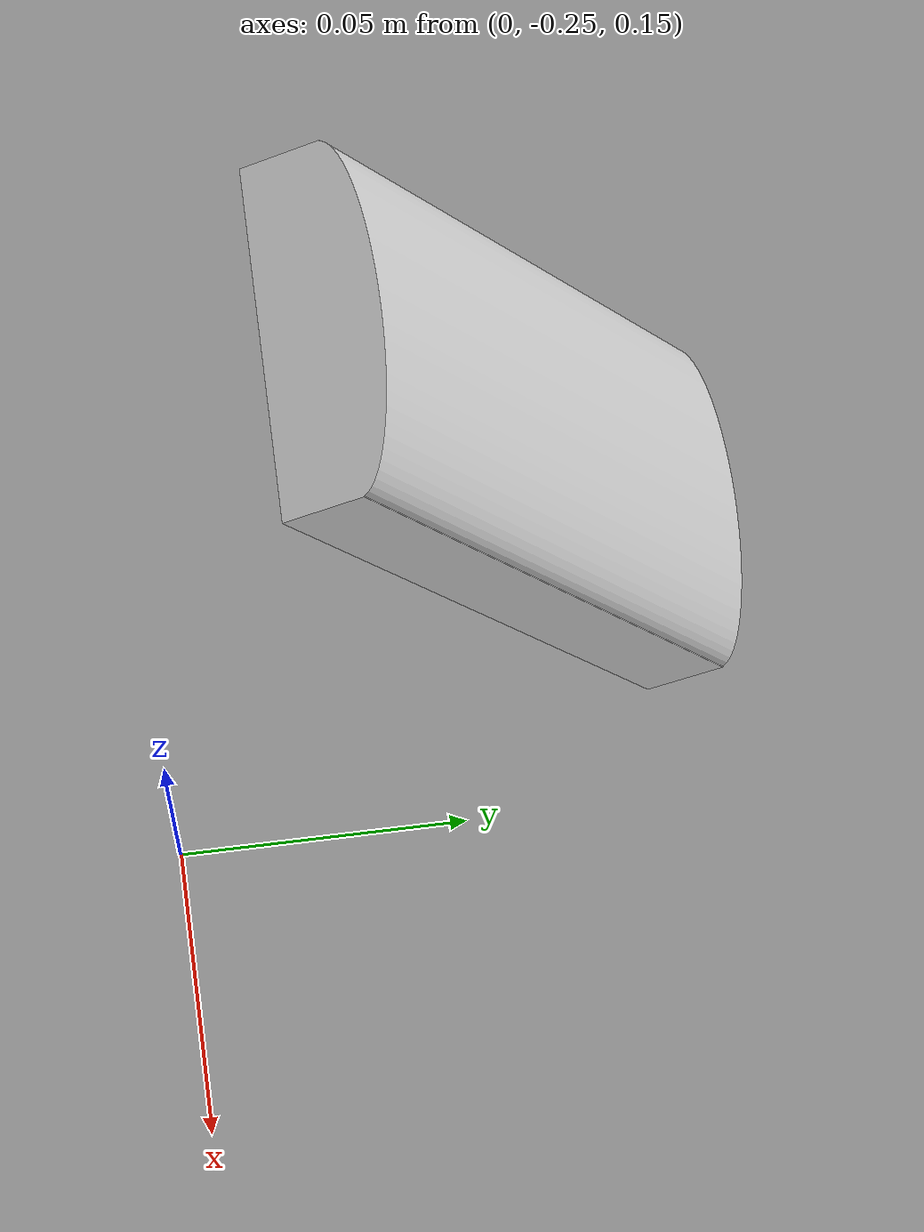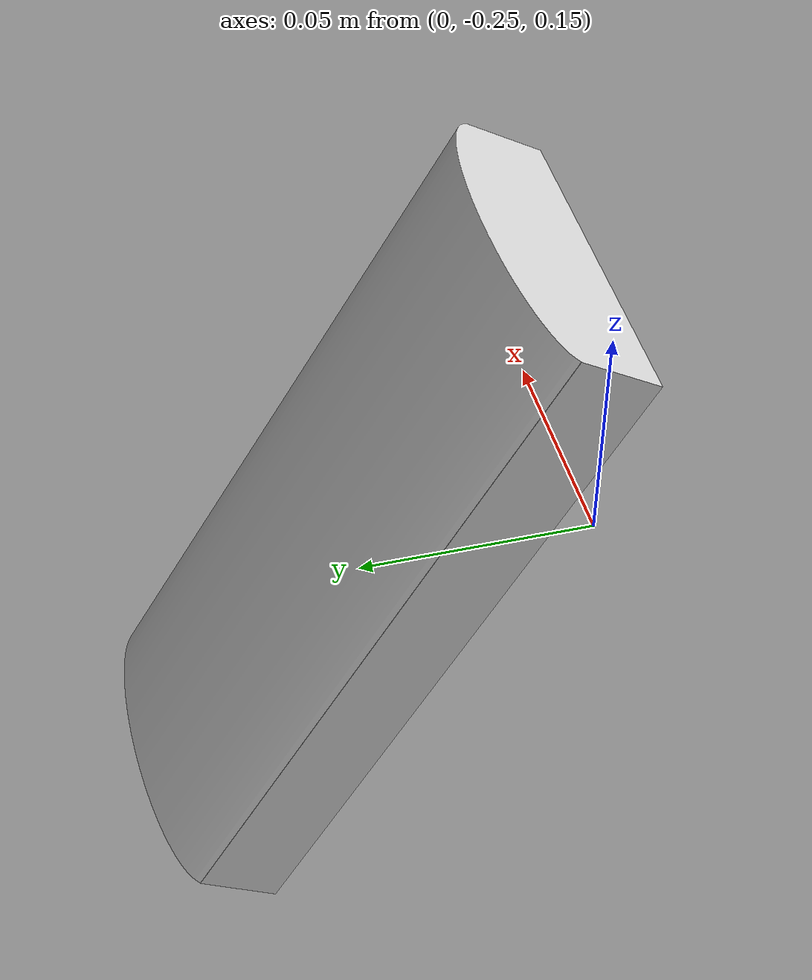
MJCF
<mujoco model="coffee_lid">
  <asset>
    <mesh file="meshes/coffee_lid.stl" name="coffee_lid_mesh" scale="0.01 0.01 0.01"/>
    <texture file="../textures/ceramic.png" name="tex-ceramic"/>
    <material name="ceramic" reflectance="0.5" texrepeat="1 1" texture="tex-ceramic" texuniform="true"/>
  </asset>
  <worldbody>
    <body>
      <body name="collision">
        <geom pos="0 0 0" mesh="coffee_lid_mesh" type="mesh" solimp="0.998 0.998 0.001" solref="0.001 1" density="1000" friction="0.95 0.3 0.1" group="1" condim="4" rgba="0.839 0.839 0.839 1" material="ceramic"/>
      </body>
      <body name="visual">
        <geom pos="0 0 0" mesh="coffee_lid_mesh" type="mesh" conaffinity="0" contype="0"  group="0" mass="0.0001"/>
        <geom pos="0 0 0" mesh="coffee_lid_mesh" type="mesh" conaffinity="0" contype="0"  group="1" mass="0.0001"/>
      </body>
      <site rgba="0 0 0 0" size="0.005" pos="0 0 -0.0095" name="bottom_site"/>
      <site rgba="0 0 0 0" size="0.005" pos="0 0 0.0095" name="top_site"/>
      <site rgba="0 0 0 0" size="0.005" pos="0.0295 0.044 0" name="horizontal_radius_site"/>
    </body>
  </worldbody>
</mujoco>
